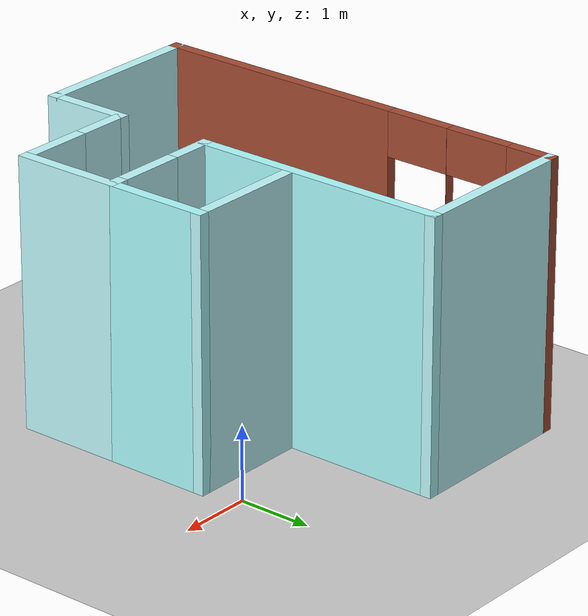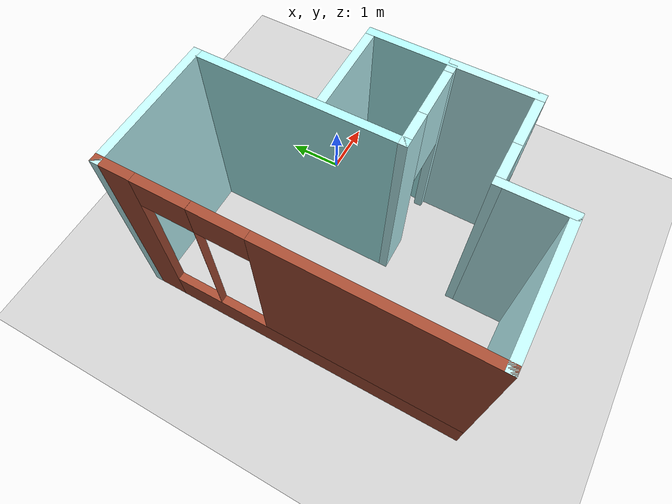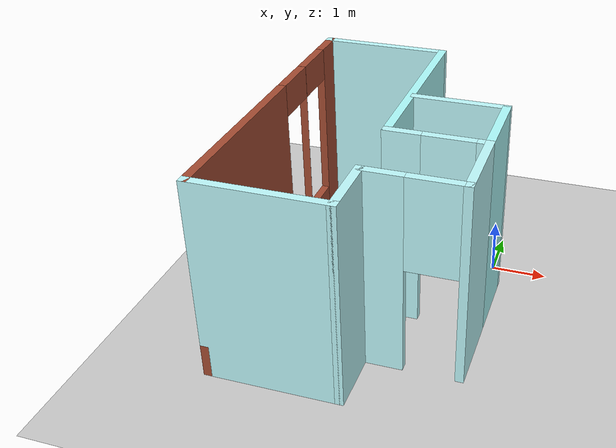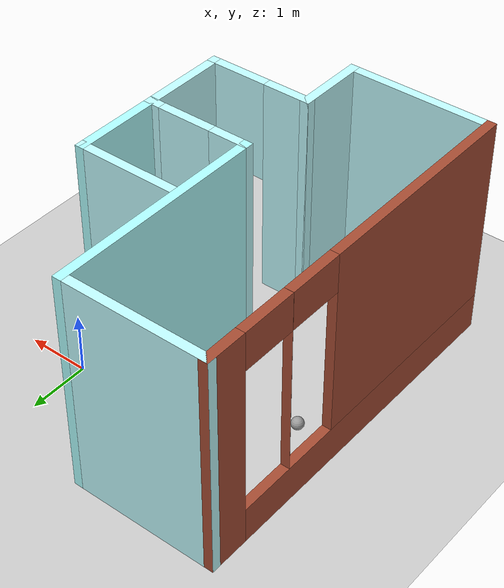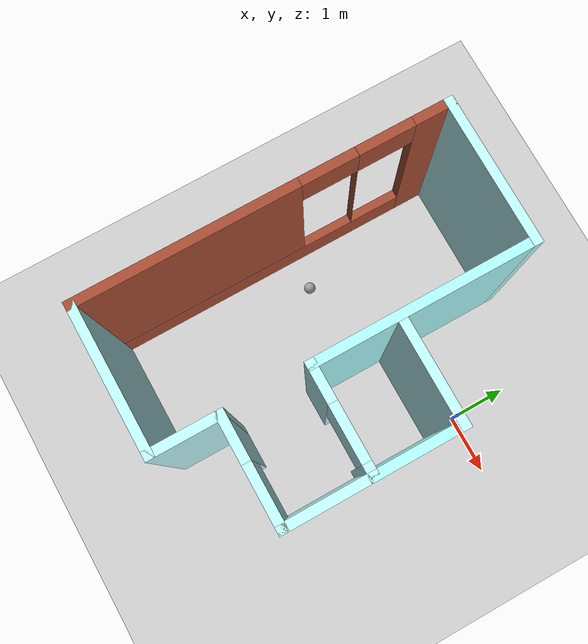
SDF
<sdf version="1.6">
 <world name="default">
  <model name="ground_plane">
   <static>1</static>
   <link name="link">
    <collision name="collision">
     <geometry><plane><normal>0 0 1</normal><size>100 100</size></plane></geometry>
     <surface>
      <contact><collide_bitmask>65535</collide_bitmask></contact>
      <friction><ode><mu>100</mu><mu2>50</mu2></ode></friction>
     </surface>
    </collision>
    <visual name="visual">
     <cast_shadows>0</cast_shadows>
     <geometry><plane><normal>0 0 1</normal><size>100 100</size></plane></geometry>
     <material>
      <script><uri>file://media/materials/scripts/gazebo.material</uri><name>Gazebo/Grey</name></script>
     </material>
    </visual>
   </link>
  </model>
  <model name="project1_building">
   <pose>-1.84991 -1.35299 0 0 -0 0</pose>
   <link name="Wall_27">
    <pose>-1.98497 0 0 0 0 -1.5708</pose>
    <visual name="Wall_27_Visual_0">
     <pose>-2.71564 0 1.83 0 -0 0</pose>
     <geometry><box><size>0.668723 0.15 3.66</size></box></geometry>
     <material>
      <script><uri>file://media/materials/scripts/gazebo.material</uri><name>Gazebo/Bricks</name></script>
      <ambient>0.435294 0.796078 0.67451 1</ambient>
     </material>
     <meta><layer>0</layer></meta>
    </visual>
    <collision name="Wall_27_Collision_0">
     <geometry><box><size>0.668723 0.15 3.66</size></box></geometry>
     <pose>-2.71564 0 1.83 0 -0 0</pose>
    </collision>
    <visual name="Wall_27_Visual_1">
     <pose>0.334362 0 0.305 0 -0 0</pose>
     <geometry><box><size>5.43128 0.15 0.61</size></box></geometry>
     <material>
      <script><uri>file://media/materials/scripts/gazebo.material</uri><name>Gazebo/Bricks</name></script>
      <ambient>0.435294 0.796078 0.67451 1</ambient>
     </material>
     <meta><layer>0</layer></meta>
    </visual>
    <collision name="Wall_27_Collision_1">
     <geometry><box><size>5.43128 0.15 0.61</size></box></geometry>
     <pose>0.334362 0 0.305 0 -0 0</pose>
    </collision>
    <visual name="Wall_27_Visual_2">
     <pose>-1.47001 0 2.135 0 -0 0</pose>
     <geometry><box><size>0.002525 0.15 3.05</size></box></geometry>
     <material>
      <script><uri>file://media/materials/scripts/gazebo.material</uri><name>Gazebo/Bricks</name></script>
      <ambient>0.435294 0.796078 0.67451 1</ambient>
     </material>
     <meta><layer>0</layer></meta>
    </visual>
    <collision name="Wall_27_Collision_2">
     <geometry><box><size>0.002525 0.15 3.05</size></box></geometry>
     <pose>-1.47001 0 2.135 0 -0 0</pose>
    </collision>
    <visual name="Wall_27_Visual_3">
     <pose>1.24562 0 2.135 0 -0 0</pose>
     <geometry><box><size>3.60875 0.15 3.05</size></box></geometry>
     <material>
      <script><uri>file://media/materials/scripts/gazebo.material</uri><name>Gazebo/Bricks</name></script>
      <ambient>0.435294 0.796078 0.67451 1</ambient>
     </material>
     <meta><layer>0</layer></meta>
    </visual>
    <collision name="Wall_27_Collision_3">
     <geometry><box><size>3.60875 0.15 3.05</size></box></geometry>
     <pose>1.24562 0 2.135 0 -0 0</pose>
    </collision>
    <visual name="Wall_27_Visual_4">
     <pose>-1.92628 0 3.355 0 -0 0</pose>
     <geometry><box><size>0.91 0.15 0.61</size></box></geometry>
     <material>
      <script><uri>file://media/materials/scripts/gazebo.material</uri><name>Gazebo/Bricks</name></script>
      <ambient>0.435294 0.796078 0.67451 1</ambient>
     </material>
     <meta><layer>0</layer></meta>
    </visual>
    <collision name="Wall_27_Collision_4">
     <geometry><box><size>0.91 0.15 0.61</size></box></geometry>
     <pose>-1.92628 0 3.355 0 -0 0</pose>
    </collision>
    <visual name="Wall_27_Visual_5">
     <pose>-1.01375 0 3.355 0 -0 0</pose>
     <geometry><box><size>0.91 0.15 0.61</size></box></geometry>
     <material>
      <script><uri>file://media/materials/scripts/gazebo.material</uri><name>Gazebo/Bricks</name></script>
      <ambient>0.435294 0.796078 0.67451 1</ambient>
     </material>
     <meta><layer>0</layer></meta>
    </visual>
    <collision name="Wall_27_Collision_5">
     <geometry><box><size>0.91 0.15 0.61</size></box></geometry>
     <pose>-1.01375 0 3.355 0 -0 0</pose>
    </collision>
   </link>
   <link name="Wall_29">
    <collision name="Wall_29_Collision">
     <geometry><box><size>2.44 0.15 3.66</size></box></geometry>
     <pose>0 0 1.83 0 -0 0</pose>
    </collision>
    <visual name="Wall_29_Visual">
     <pose>0 0 1.83 0 -0 0</pose>
     <geometry><box><size>2.44 0.15 3.66</size></box></geometry>
     <material>
      <script><uri>file://media/materials/scripts/gazebo.material</uri><name>Gazebo/Grey</name></script>
      <ambient>0.752941 0.988235 1 1</ambient>
     </material>
     <meta><layer>0</layer></meta>
    </visual>
    <pose>-0.839975 -2.975 0 0 -0 0</pose>
   </link>
   <link name="Wall_31">
    <collision name="Wall_31_Collision">
     <geometry><box><size>2.44 0.15 3.66</size></box></geometry>
     <pose>0 0 1.83 0 -0 0</pose>
    </collision>
    <visual name="Wall_31_Visual">
     <pose>0 0 1.83 0 -0 0</pose>
     <geometry><box><size>2.44 0.15 3.66</size></box></geometry>
     <material>
      <script><uri>file://media/materials/scripts/gazebo.material</uri><name>Gazebo/Grey</name></script>
      <ambient>0.752941 0.988235 1 1</ambient>
     </material>
     <meta><layer>0</layer></meta>
    </visual>
    <pose>-0.84003 2.97499 0 0 0 -6e-06</pose>
   </link>
   <link name="Wall_33">
    <collision name="Wall_33_Collision">
     <geometry><box><size>1.22 0.15 3.66</size></box></geometry>
     <pose>0 0 1.83 0 -0 0</pose>
    </collision>
    <visual name="Wall_33_Visual">
     <pose>0 0 1.83 0 -0 0</pose>
     <geometry><box><size>1.22 0.15 3.66</size></box></geometry>
     <material>
      <script><uri>file://media/materials/scripts/gazebo.material</uri><name>Gazebo/Grey</name></script>
      <ambient>0.752941 0.988235 1 1</ambient>
     </material>
     <meta><layer>0</layer></meta>
    </visual>
    <pose>0.305025 -2.44 0 0 -0 1.5708</pose>
   </link>
   <link name="Wall_35">
    <pose>1.14502 -1.905 0 0 -0 0</pose>
    <visual name="Wall_35_Visual_0">
     <pose>-0.517995 0 1.83 0 -0 0</pose>
     <geometry><box><size>0.79401 0.15 3.66</size></box></geometry>
     <material>
      <script><uri>file://media/materials/scripts/gazebo.material</uri><name>Gazebo/Grey</name></script>
      <ambient>0.752941 0.988235 1 1</ambient>
     </material>
     <meta><layer>0</layer></meta>
    </visual>
    <collision name="Wall_35_Collision_0">
     <geometry><box><size>0.79401 0.15 3.66</size></box></geometry>
     <pose>-0.517995 0 1.83 0 -0 0</pose>
    </collision>
    <visual name="Wall_35_Visual_1">
     <pose>0.847005 0 1.83 0 -0 0</pose>
     <geometry><box><size>0.13599 0.15 3.66</size></box></geometry>
     <material>
      <script><uri>file://media/materials/scripts/gazebo.material</uri><name>Gazebo/Grey</name></script>
      <ambient>0.752941 0.988235 1 1</ambient>
     </material>
     <meta><layer>0</layer></meta>
    </visual>
    <collision name="Wall_35_Collision_1">
     <geometry><box><size>0.13599 0.15 3.66</size></box></geometry>
     <pose>0.847005 0 1.83 0 -0 0</pose>
    </collision>
    <visual name="Wall_35_Visual_2">
     <pose>0.32901 0 2.83 0 -0 0</pose>
     <geometry><box><size>0.9 0.15 1.66</size></box></geometry>
     <material>
      <script><uri>file://media/materials/scripts/gazebo.material</uri><name>Gazebo/Grey</name></script>
      <ambient>0.752941 0.988235 1 1</ambient>
     </material>
     <meta><layer>0</layer></meta>
    </visual>
    <collision name="Wall_35_Collision_2">
     <geometry><box><size>0.9 0.15 1.66</size></box></geometry>
     <pose>0.32901 0 2.83 0 -0 0</pose>
    </collision>
   </link>
   <link name="Wall_42">
    <collision name="Wall_42_Collision">
     <geometry><box><size>1.52 0.15 3.66</size></box></geometry>
     <pose>0 0 1.83 0 -0 0</pose>
    </collision>
    <visual name="Wall_42_Visual">
     <pose>0 0 1.83 0 -0 0</pose>
     <geometry><box><size>1.52 0.15 3.66</size></box></geometry>
     <material>
      <script><uri>file://media/materials/scripts/gazebo.material</uri><name>Gazebo/Grey</name></script>
      <ambient>0.752941 0.988235 1 1</ambient>
     </material>
     <meta><layer>0</layer></meta>
    </visual>
    <pose>1.98497 -1.22001 0 0 -0 1.57088</pose>
   </link>
   <link name="Wall_44">
    <pose>1.14491 -0.535015 0 0 -0 3.14159</pose>
    <visual name="Wall_44_Visual_0">
     <pose>-0.778599 0 1.83 0 -0 0</pose>
     <geometry><box><size>0.272801 0.15 3.66</size></box></geometry>
     <material>
      <script><uri>file://media/materials/scripts/gazebo.material</uri><name>Gazebo/Grey</name></script>
      <ambient>0.752941 0.988235 1 1</ambient>
     </material>
     <meta><layer>0</layer></meta>
    </visual>
    <collision name="Wall_44_Collision_0">
     <geometry><box><size>0.272801 0.15 3.66</size></box></geometry>
     <pose>-0.778599 0 1.83 0 -0 0</pose>
    </collision>
    <visual name="Wall_44_Visual_1">
     <pose>0.586401 0 1.83 0 -0 0</pose>
     <geometry><box><size>0.657199 0.15 3.66</size></box></geometry>
     <material>
      <script><uri>file://media/materials/scripts/gazebo.material</uri><name>Gazebo/Grey</name></script>
      <ambient>0.752941 0.988235 1 1</ambient>
     </material>
     <meta><layer>0</layer></meta>
    </visual>
    <collision name="Wall_44_Collision_1">
     <geometry><box><size>0.657199 0.15 3.66</size></box></geometry>
     <pose>0.586401 0 1.83 0 -0 0</pose>
    </collision>
    <visual name="Wall_44_Visual_2">
     <pose>-0.192199 0 2.83 0 -0 0</pose>
     <geometry><box><size>0.9 0.15 1.66</size></box></geometry>
     <material>
      <script><uri>file://media/materials/scripts/gazebo.material</uri><name>Gazebo/Grey</name></script>
      <ambient>0.752941 0.988235 1 1</ambient>
     </material>
     <meta><layer>0</layer></meta>
    </visual>
    <collision name="Wall_44_Collision_2">
     <geometry><box><size>0.9 0.15 1.66</size></box></geometry>
     <pose>-0.192199 0 2.83 0 -0 0</pose>
    </collision>
   </link>
   <link name="Wall_46">
    <collision name="Wall_46_Collision">
     <geometry><box><size>3.66 0.15 3.66</size></box></geometry>
     <pose>0 0 1.83 0 -0 0</pose>
    </collision>
    <visual name="Wall_46_Visual">
     <pose>0 0 1.83 0 -0 0</pose>
     <geometry><box><size>3.66 0.15 3.66</size></box></geometry>
     <material>
      <script><uri>file://media/materials/scripts/gazebo.material</uri><name>Gazebo/Grey</name></script>
      <ambient>0.686275 0.996078 1 1</ambient>
     </material>
     <meta><layer>0</layer></meta>
    </visual>
    <pose>0.304915 1.21999 0 0 -0 1.5708</pose>
   </link>
   <link name="Wall_48">
    <collision name="Wall_48_Collision">
     <geometry><box><size>1.52 0.15 3.66</size></box></geometry>
     <pose>0 0 1.83 0 -0 0</pose>
    </collision>
    <visual name="Wall_48_Visual">
     <pose>0 0 1.83 0 -0 0</pose>
     <geometry><box><size>1.52 0.15 3.66</size></box></geometry>
     <material>
      <script><uri>file://media/materials/scripts/gazebo.material</uri><name>Gazebo/Grey</name></script>
      <ambient>0.686275 0.996078 1 1</ambient>
     </material>
     <meta><layer>0</layer></meta>
    </visual>
    <pose>1.98491 0.149985 0 0 -0 1.5708</pose>
   </link>
   <link name="Wall_50">
    <collision name="Wall_50_Collision">
     <geometry><box><size>1.75 0.15 3.66</size></box></geometry>
     <pose>0 0 1.83 0 -0 0</pose>
    </collision>
    <visual name="Wall_50_Visual">
     <pose>0 0 1.83 0 -0 0</pose>
     <geometry><box><size>1.75 0.15 3.66</size></box></geometry>
     <material>
      <script><uri>file://media/materials/scripts/gazebo.material</uri><name>Gazebo/Grey</name></script>
      <ambient>0.752941 0.988235 1 1</ambient>
     </material>
     <meta><layer>0</layer></meta>
    </visual>
    <pose>1.18491 0.834985 0 0 -0 3.14159</pose>
   </link>
   <static>1</static>
  </model>
  <model name="my_ball">
   <link name="link">
    <pose>0.793557 -0.875815 0.05 0 -0 0</pose>
    <inertial>
     <mass>1</mass>
     <inertia><ixx>0.1</ixx><ixy>0</ixy><ixz>0</ixz><iyy>0.1</iyy><iyz>0</iyz><izz>0.1</izz></inertia>
    </inertial>
    <visual name="visual">
     <geometry><sphere><radius>0.1</radius></sphere></geometry>
     <material>
      <script><name>Gazebo/Grey</name><uri>file://media/materials/scripts/gazebo.material</uri></script>
      <shader type="pixel"><normal_map>__default__</normal_map></shader>
      <ambient>1 1 1 1</ambient>
      <diffuse>1 1 1 1</diffuse>
      <specular>1 1 1 1</specular>
      <emissive>1 1 1 1</emissive>
     </material>
    </visual>
    <collision name="collision">
     <geometry><sphere><radius>0.1</radius></sphere></geometry>
     <surface>
      <friction>
       <ode><mu>1</mu><mu2>1</mu2><fdir1>0 0 0</fdir1><slip1>0</slip1><slip2>0</slip2></ode>
       <torsional>
        <coefficient>1</coefficient>
        <patch_radius>0</patch_radius>
        <surface_radius>0</surface_radius>
        <use_patch_radius>1</use_patch_radius>
        <ode><slip>0</slip></ode>
       </torsional>
      </friction>
      <bounce><restitution_coefficient>0</restitution_coefficient><threshold>1e+06</threshold></bounce>
      <contact>
       <collide_without_contact>0</collide_without_contact>
       <collide_without_contact_bitmask>1</collide_without_contact_bitmask>
       <collide_bitmask>1</collide_bitmask>
       <ode>
        <soft_cfm>0</soft_cfm>
        <soft_erp>0.2</soft_erp>
        <kp>1e+13</kp>
        <kd>1</kd>
        <max_vel>0.01</max_vel>
        <min_depth>0</min_depth>
       </ode>
       <bullet>
        <split_impulse>1</split_impulse>
        <split_impulse_penetration_threshold>-0.01</split_impulse_penetration_threshold>
        <soft_cfm>0</soft_cfm>
        <soft_erp>0.2</soft_erp>
        <kp>1e+13</kp>
        <kd>1</kd>
       </bullet>
      </contact>
     </surface>
    </collision>
   </link>
   <static>0</static>
   <pose>-3.98085 -0.142494 0.05 0 -0 0</pose>
  </model>
 </world>
</sdf>
